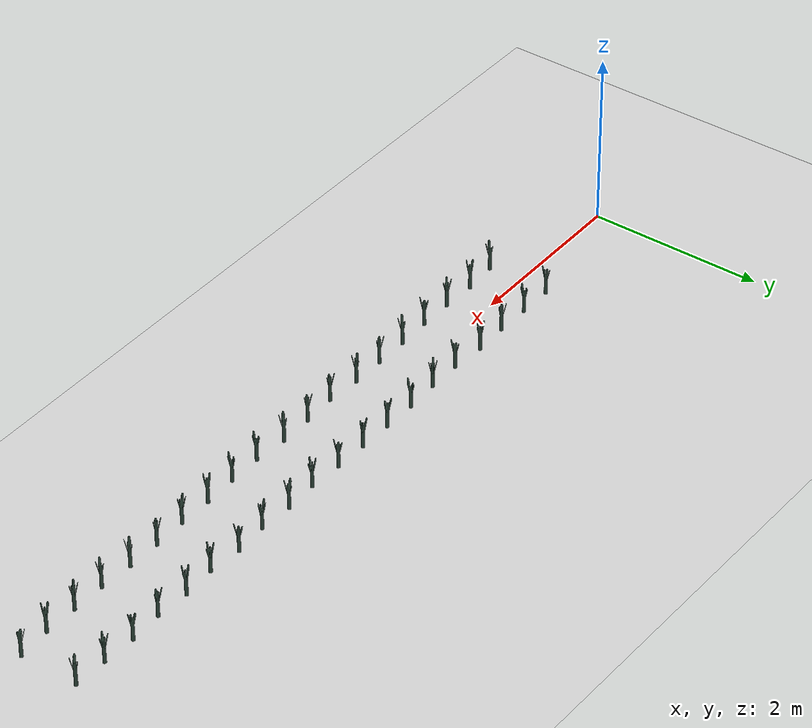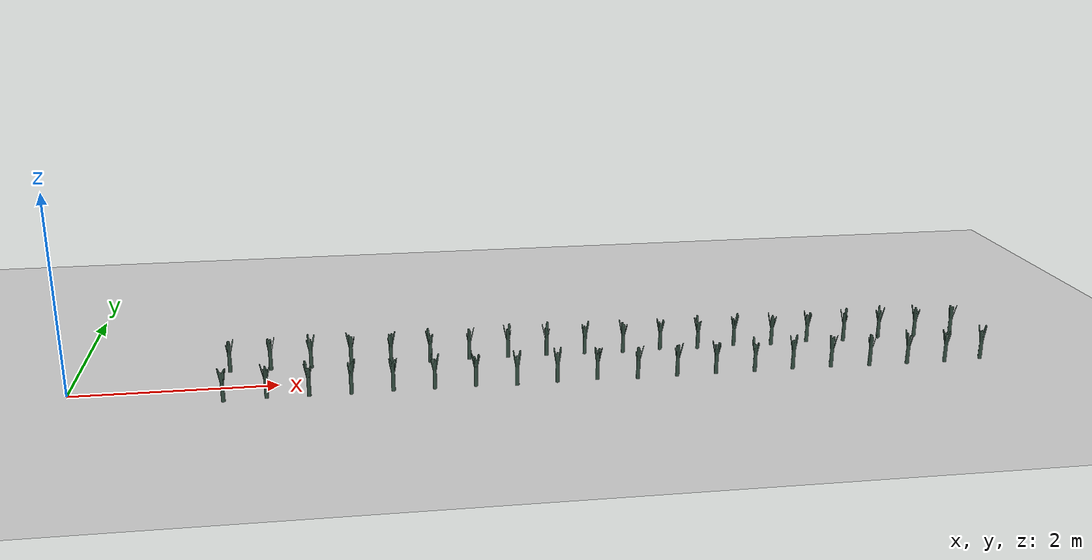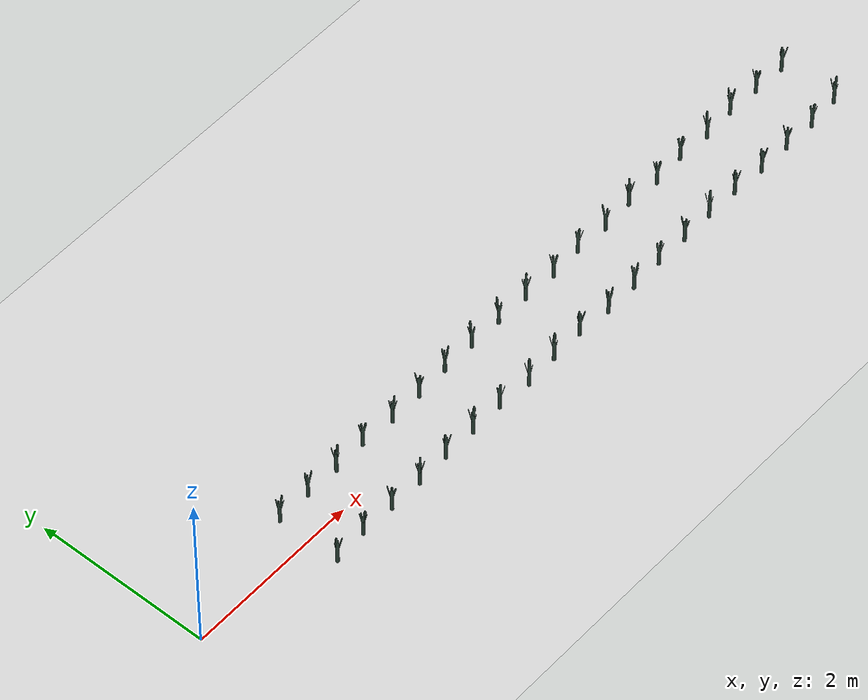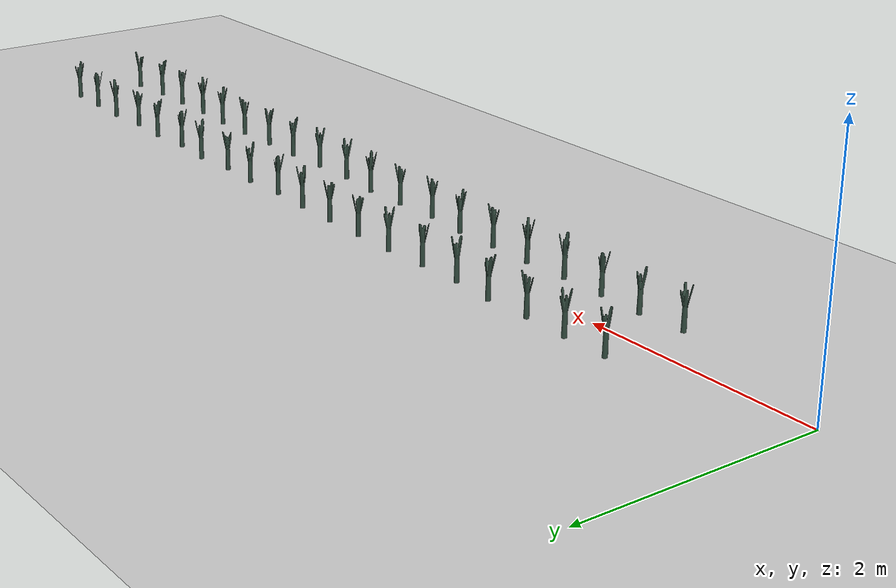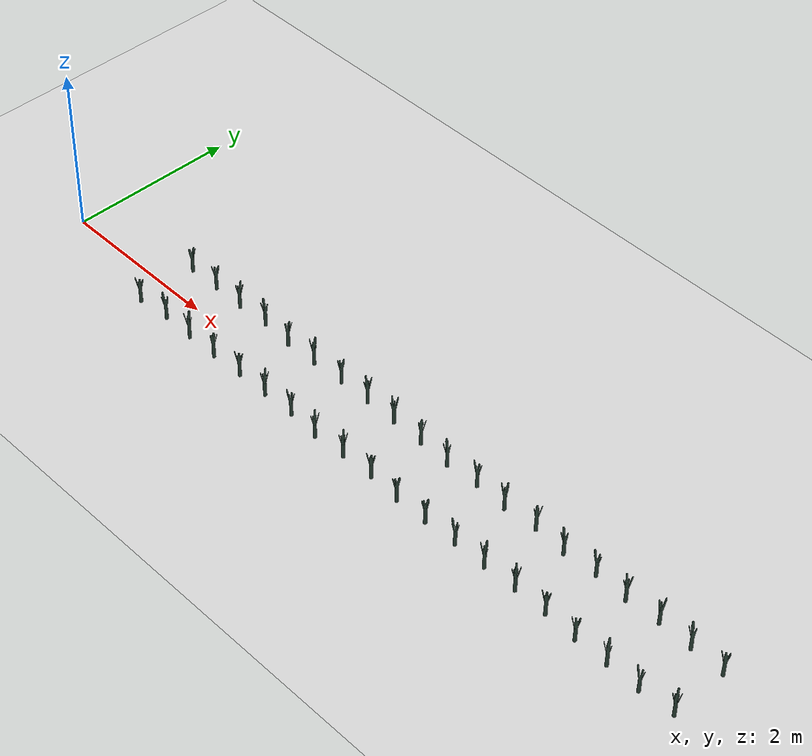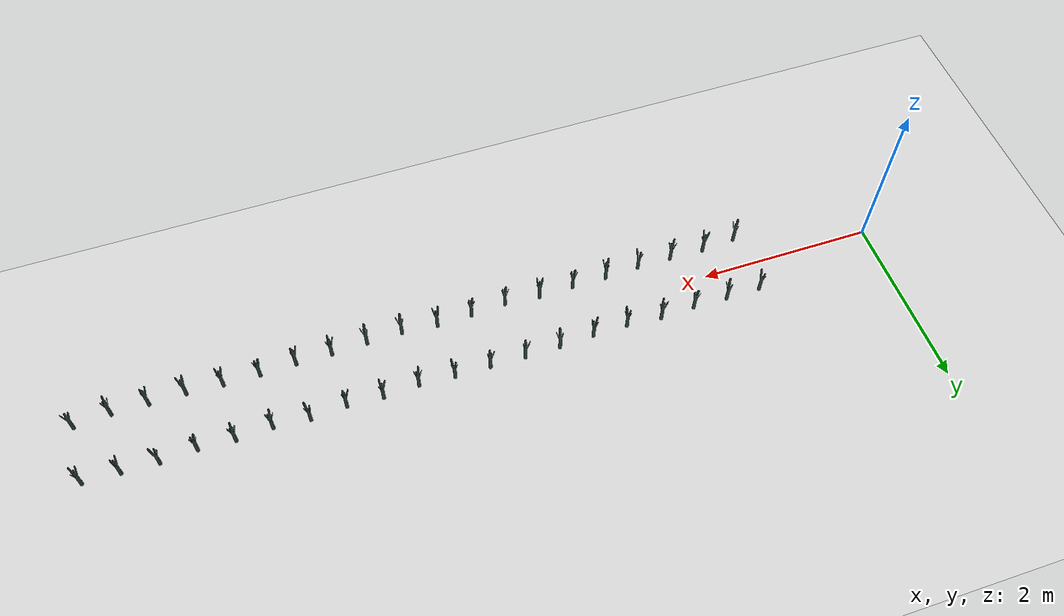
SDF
<sdf version="1.6">
 <world name="default">
  <light name="sun" type="directional">
   <pose>0 0 10 0 -0 0</pose>
   <diffuse>0.5 0.5 0.5 1</diffuse>
   <specular>0.1 0.1 0.1 1</specular>
   <attenuation>
    <range>1000</range>
    <constant>0.9</constant>
    <linear>0.01</linear>
    <quadratic>0.001</quadratic>
   </attenuation>
   <direction>0.9 0.5 -1</direction>
  </light>
  <scene><background>130 200 255 1</background><ambient>130 140 140 1</ambient></scene>
  <include><uri>model://dirt_plane</uri></include>
  <include><uri>model://Leek</uri><pose>1.500000 0.354729 0.15 0 0 42.557578</pose><static>0</static></include>
  <include><uri>model://Leek</uri><pose>1.900000 0.356777 0.15 0 0 60.991665</pose><static>0</static></include>
  <include><uri>model://Leek</uri><pose>2.300000 0.349349 0.15 0 0 -5.861803</pose><static>0</static></include>
  <include><uri>model://Leek</uri><pose>2.700000 0.365670 0.15 0 0 141.029480</pose><static>0</static></include>
  <include>
   <uri>model://Leek</uri>
   <pose>3.100000 0.335193 0.15 0 0 -133.264319</pose>
   <static>0</static>
  </include>
  <include><uri>model://Leek</uri><pose>3.500000 0.342545 0.15 0 0 -67.098605</pose><static>0</static></include>
  <include><uri>model://Leek</uri><pose>3.900000 0.363074 0.15 0 0 117.662380</pose><static>0</static></include>
  <include><uri>model://Leek</uri><pose>4.300000 0.362694 0.15 0 0 114.244909</pose><static>0</static></include>
  <include><uri>model://Leek</uri><pose>4.700000 0.358516 0.15 0 0 76.646653</pose><static>0</static></include>
  <include><uri>model://Leek</uri><pose>5.100000 0.353378 0.15 0 0 30.400996</pose><static>0</static></include>
  <include>
   <uri>model://Leek</uri>
   <pose>5.500000 0.331443 0.15 0 0 -167.010537</pose>
   <static>0</static>
  </include>
  <include><uri>model://Leek</uri><pose>5.900000 0.354566 0.15 0 0 41.096736</pose><static>0</static></include>
  <include>
   <uri>model://Leek</uri>
   <pose>6.300000 0.332731 0.15 0 0 -155.421390</pose>
   <static>0</static>
  </include>
  <include><uri>model://Leek</uri><pose>6.700000 0.363162 0.15 0 0 118.454173</pose><static>0</static></include>
  <include>
   <uri>model://Leek</uri>
   <pose>7.100000 0.330758 0.15 0 0 -173.182175</pose>
   <static>0</static>
  </include>
  <include><uri>model://Leek</uri><pose>7.500000 0.357326 0.15 0 0 65.930341</pose><static>0</static></include>
  <include>
   <uri>model://Leek</uri>
   <pose>7.900000 0.334742 0.15 0 0 -137.324171</pose>
   <static>0</static>
  </include>
  <include><uri>model://Leek</uri><pose>8.300000 0.359738 0.15 0 0 87.640564</pose><static>0</static></include>
  <include><uri>model://Leek</uri><pose>8.700000 0.346086 0.15 0 0 -35.223514</pose><static>0</static></include>
  <include>
   <uri>model://Leek</uri>
   <pose>9.100000 0.334370 0.15 0 0 -140.669213</pose>
   <static>0</static>
  </include>
  <include>
   <uri>model://Leek</uri>
   <pose>1.500000 -0.369102 0.15 0 0 -171.918334</pose>
   <static>0</static>
  </include>
  <include><uri>model://Leek</uri><pose>1.900000 -0.339879 0.15 0 0 91.087550</pose><static>0</static></include>
  <include>
   <uri>model://Leek</uri>
   <pose>2.300000 -0.351145 0.15 0 0 -10.303520</pose>
   <static>0</static>
  </include>
  <include>
   <uri>model://Leek</uri>
   <pose>2.700000 -0.352212 0.15 0 0 -19.909632</pose>
   <static>0</static>
  </include>
  <include>
   <uri>model://Leek</uri>
   <pose>3.100000 -0.336997 0.15 0 0 117.029204</pose>
   <static>0</static>
  </include>
  <include>
   <uri>model://Leek</uri>
   <pose>3.500000 -0.337375 0.15 0 0 113.625227</pose>
   <static>0</static>
  </include>
  <include>
   <uri>model://Leek</uri>
   <pose>3.900000 -0.330058 0.15 0 0 179.477091</pose>
   <static>0</static>
  </include>
  <include>
   <uri>model://Leek</uri>
   <pose>4.300000 -0.363882 0.15 0 0 -124.939522</pose>
   <static>0</static>
  </include>
  <include><uri>model://Leek</uri><pose>4.700000 -0.342247 0.15 0 0 69.774629</pose><static>0</static></include>
  <include>
   <uri>model://Leek</uri>
   <pose>5.100000 -0.331411 0.15 0 0 167.301063</pose>
   <static>0</static>
  </include>
  <include>
   <uri>model://Leek</uri>
   <pose>5.500000 -0.364860 0.15 0 0 -133.741855</pose>
   <static>0</static>
  </include>
  <include>
   <uri>model://Leek</uri>
   <pose>5.900000 -0.359265 0.15 0 0 -83.383304</pose>
   <static>0</static>
  </include>
  <include><uri>model://Leek</uri><pose>6.300000 -0.344759 0.15 0 0 47.170476</pose><static>0</static></include>
  <include><uri>model://Leek</uri><pose>6.700000 -0.347695 0.15 0 0 20.746808</pose><static>0</static></include>
  <include>
   <uri>model://Leek</uri>
   <pose>7.100000 -0.335965 0.15 0 0 126.314992</pose>
   <static>0</static>
  </include>
  <include><uri>model://Leek</uri><pose>7.500000 -0.339103 0.15 0 0 98.074640</pose><static>0</static></include>
  <include>
   <uri>model://Leek</uri>
   <pose>7.900000 -0.362114 0.15 0 0 -109.028615</pose>
   <static>0</static>
  </include>
  <include>
   <uri>model://Leek</uri>
   <pose>8.300000 -0.362326 0.15 0 0 -110.930596</pose>
   <static>0</static>
  </include>
  <include>
   <uri>model://Leek</uri>
   <pose>8.700000 -0.368497 0.15 0 0 -166.476428</pose>
   <static>0</static>
  </include>
  <include>
   <uri>model://Leek</uri>
   <pose>9.100000 -0.337390 0.15 0 0 113.487185</pose>
   <static>0</static>
  </include>
 </world>
</sdf>

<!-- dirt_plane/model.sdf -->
<sdf version="1.4">
<model name="dirt_plane">
  <static>true</static>
    <link name="link">
      <collision name="collision">
        <geometry>
          <plane>
            <normal>0 0 1</normal>
            <size>100 100</size>
          </plane>
        </geometry>
        <surface>
          <friction>
            <ode>
              <mu>0.99</mu>
              <mu2>0.99</mu2>
            </ode>
          </friction>
        </surface>
      </collision>
      <visual name="visual">
        <cast_shadows>false</cast_shadows>
        <geometry>
          <plane>
            <normal>0 0 1</normal>
            <size>100 100</size>
          </plane>
        </geometry>
        <material>
          <script>
            <uri>model://ground_plane/materials/scripts/my_ground_plane.material</uri>
            <uri>model://ground_plane/materials/textures</uri>
            <name>my_ground_plane/Dirt</name>
          </script>
        </material>
      </visual>
    </link>
  </model>
</sdf>

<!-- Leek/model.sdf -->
<sdf version='1.6'>
  <model name='Leek'>
    <link name='link'>
      <pose frame=''>0 0 0 0 -0 0</pose>
      <inertial>
        <mass>1</mass>
        <inertia>
          <ixx>0.145833</ixx>
          <ixy>0</ixy>
          <ixz>0</ixz>
          <iyy>0.145833</iyy>
          <iyz>0</iyz>
          <izz>0.125</izz>
        </inertia>
        <pose frame=''>0 0 0 0 -0 0</pose>
      </inertial>
      <self_collide>0</self_collide>
      <kinematic>0</kinematic>
      <gravity>1</gravity>
      <visual name='visual'>
        <geometry>
          <mesh>
            <uri>model://Leek/Poireau.dae</uri>
            <scale>1 1 1</scale>
          </mesh>
        </geometry>
        <material>
          <script>
            <name>Gazebo/Grey</name>
            <uri>file://media/materials/scripts/gazebo.material</uri>
          </script>
          <ambient>0.3 0.6 0.5 0</ambient>
          <diffuse>0.2 0.3 0.25 0</diffuse>
          <specular>0 0 0 1</specular>
          <emissive>0 0 0 1</emissive>
          <shader type='vertex'>
            <normal_map>__default__</normal_map>
          </shader>
        </material>
        <pose frame=''>0 0 -0.08 0 -0 0</pose>
        <cast_shadows>1</cast_shadows>
        <transparency>0</transparency>
      </visual>
      <collision name='collision'>
        <laser_retro>0</laser_retro>
        <max_contacts>10</max_contacts>
        <pose frame=''>0 0 0 0 -0 0</pose>
        <geometry>
          <cylinder>
            <radius>0.02</radius>
            <length>0.25</length>
          </cylinder>
        </geometry>
        <surface>
          <friction>
            <ode>
              <mu>1</mu>
              <mu2>1</mu2>
              <fdir1>0 0 0</fdir1>
              <slip1>0</slip1>
              <slip2>0</slip2>
            </ode>
            <torsional>
              <coefficient>1</coefficient>
              <patch_radius>0</patch_radius>
              <surface_radius>0</surface_radius>
              <use_patch_radius>1</use_patch_radius>
              <ode>
                <slip>0</slip>
              </ode>
            </torsional>
          </friction>
          <bounce>
            <restitution_coefficient>0</restitution_coefficient>
            <threshold>1e+06</threshold>
          </bounce>
          <contact>
            <collide_without_contact>0</collide_without_contact>
            <collide_without_contact_bitmask>1</collide_without_contact_bitmask>
            <collide_bitmask>1</collide_bitmask>
            <ode>
              <soft_cfm>0</soft_cfm>
              <soft_erp>0.2</soft_erp>
              <kp>1e+13</kp>
              <kd>1</kd>
              <max_vel>0.01</max_vel>
              <min_depth>0</min_depth>
            </ode>
            <bullet>
              <split_impulse>1</split_impulse>
              <split_impulse_penetration_threshold>-0.01</split_impulse_penetration_threshold>
              <soft_cfm>0</soft_cfm>
              <soft_erp>0.2</soft_erp>
              <kp>1e+13</kp>
              <kd>1</kd>
            </bullet>
          </contact>
        </surface>
      </collision>
    </link>
    <static>0</static>
    <allow_auto_disable>1</allow_auto_disable>
  </model>
</sdf>
